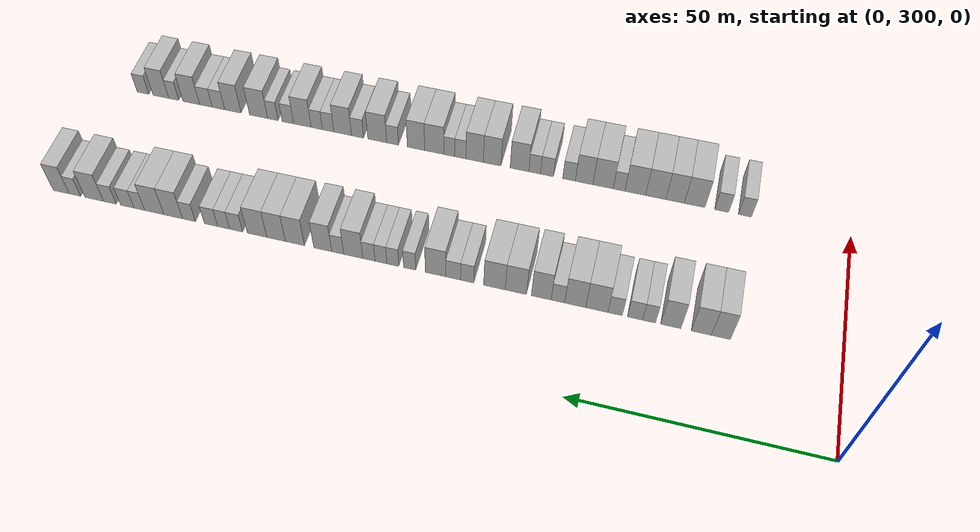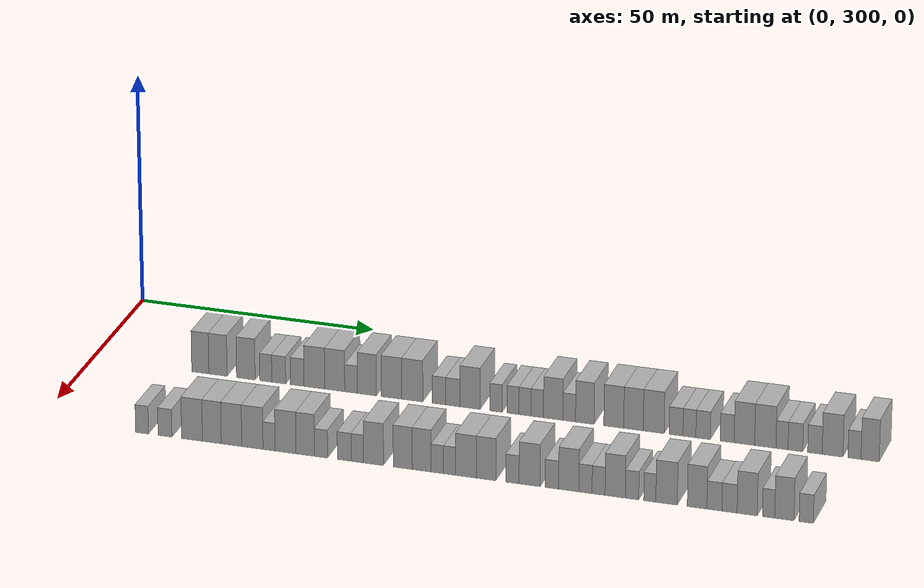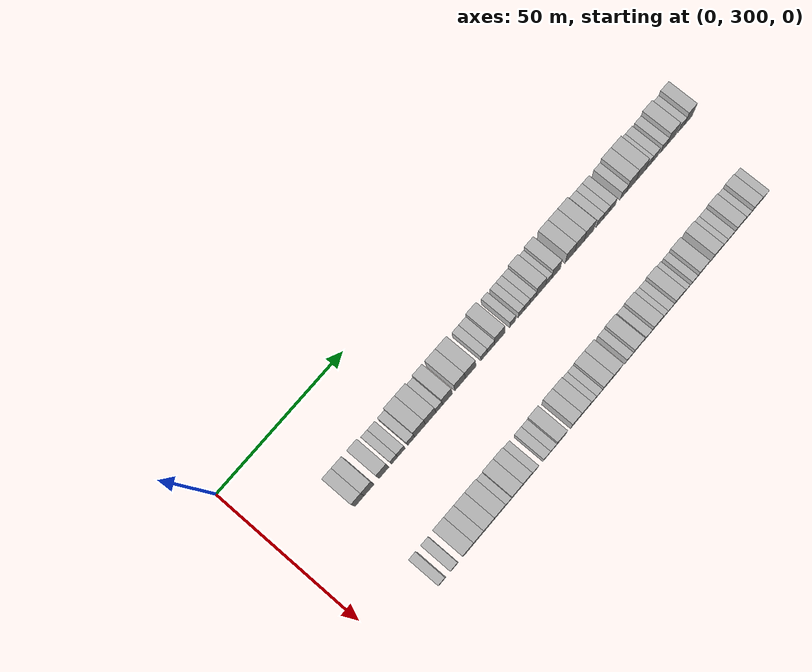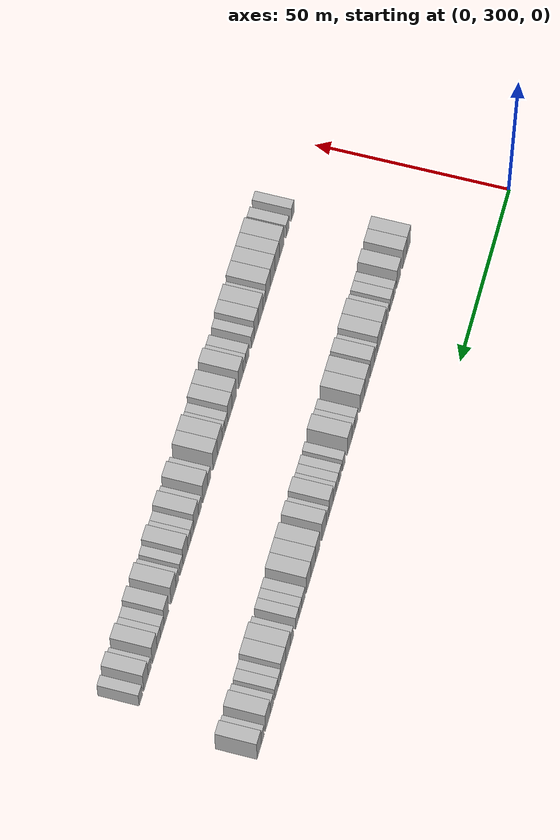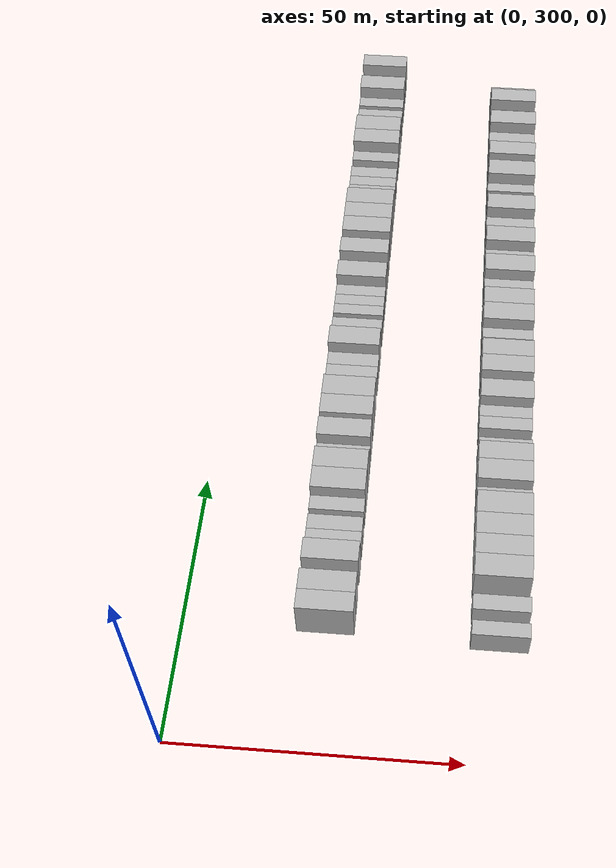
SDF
<sdf version="1.6">
 <world name="default">
  <model name="building_194">
   <static>1</static>
   <pose>25.0000 323.0744 0 0.000000 0.000000 0.000000</pose>
   <link name="link">
    <pose>0 0 4.50 0 0 0</pose>
    <collision name="collision"><geometry><box><size>10.0000 3.6449 9.0000</size></box></geometry></collision>
    <visual name="visual">
     <cast_shadows>0</cast_shadows>
     <geometry><box><size>10.0000 3.6449 9.0000</size></box></geometry>
     <material>
      <script>
       <uri>model://HANNAS_wall/materials/scripts</uri>
       <uri>model://HANNAS_wall/materials/textures</uri>
       <name>vrc/HANNAS_wall</name>
      </script>
     </material>
    </visual>
   </link>
  </model>
  <model name="building_195">
   <static>1</static>
   <pose>25.0000 326.8344 0 0.000000 0.000000 0.000000</pose>
   <link name="link">
    <pose>0 0 4.50 0 0 0</pose>
    <collision name="collision"><geometry><box><size>10.0000 3.8751 9.0000</size></box></geometry></collision>
    <visual name="visual">
     <cast_shadows>0</cast_shadows>
     <geometry><box><size>10.0000 3.8751 9.0000</size></box></geometry>
     <material>
      <script>
       <uri>model://HANNAS_wall/materials/scripts</uri>
       <uri>model://HANNAS_wall/materials/textures</uri>
       <name>vrc/HANNAS_wall</name>
      </script>
     </material>
    </visual>
   </link>
  </model>
  <model name="building_196">
   <static>1</static>
   <pose>25.0000 332.7412 0 0.000000 0.000000 0.000000</pose>
   <link name="link">
    <pose>0 0 4.50 0 0 0</pose>
    <collision name="collision"><geometry><box><size>10.0000 3.9386 9.0000</size></box></geometry></collision>
    <visual name="visual">
     <cast_shadows>0</cast_shadows>
     <geometry><box><size>10.0000 3.9386 9.0000</size></box></geometry>
     <material>
      <script>
       <uri>model://HANNAS_wall/materials/scripts</uri>
       <uri>model://HANNAS_wall/materials/textures</uri>
       <name>vrc/HANNAS_wall</name>
      </script>
     </material>
    </visual>
   </link>
  </model>
  <model name="building_197">
   <static>1</static>
   <pose>25.0000 336.9726 0 0.000000 0.000000 0.000000</pose>
   <link name="link">
    <pose>0 0 3.00 0 0 0</pose>
    <collision name="collision"><geometry><box><size>10.0000 2.5241 6.0000</size></box></geometry></collision>
    <visual name="visual">
     <cast_shadows>0</cast_shadows>
     <geometry><box><size>10.0000 2.5241 6.0000</size></box></geometry>
     <material>
      <script>
       <uri>model://HANNAS_wall/materials/scripts</uri>
       <uri>model://HANNAS_wall/materials/textures</uri>
       <name>vrc/HANNAS_wall</name>
      </script>
     </material>
    </visual>
   </link>
  </model>
  <model name="building_198">
   <static>1</static>
   <pose>25.0000 339.7141 0 0.000000 0.000000 0.000000</pose>
   <link name="link">
    <pose>0 0 3.00 0 0 0</pose>
    <collision name="collision"><geometry><box><size>10.0000 2.9589 6.0000</size></box></geometry></collision>
    <visual name="visual">
     <cast_shadows>0</cast_shadows>
     <geometry><box><size>10.0000 2.9589 6.0000</size></box></geometry>
     <material>
      <script>
       <uri>model://HANNAS_wall/materials/scripts</uri>
       <uri>model://HANNAS_wall/materials/textures</uri>
       <name>vrc/HANNAS_wall</name>
      </script>
     </material>
    </visual>
   </link>
  </model>
  <model name="building_199">
   <static>1</static>
   <pose>25.0000 343.6102 0 0.000000 0.000000 0.000000</pose>
   <link name="link">
    <pose>0 0 3.00 0 0 0</pose>
    <collision name="collision"><geometry><box><size>10.0000 2.8333 6.0000</size></box></geometry></collision>
    <visual name="visual">
     <cast_shadows>0</cast_shadows>
     <geometry><box><size>10.0000 2.8333 6.0000</size></box></geometry>
     <material>
      <script>
       <uri>model://HANNAS_wall/materials/scripts</uri>
       <uri>model://HANNAS_wall/materials/textures</uri>
       <name>vrc/HANNAS_wall</name>
      </script>
     </material>
    </visual>
   </link>
  </model>
  <model name="building_200">
   <static>1</static>
   <pose>25.0000 347.2183 0 0.000000 0.000000 0.000000</pose>
   <link name="link">
    <pose>0 0 4.50 0 0 0</pose>
    <collision name="collision"><geometry><box><size>10.0000 4.3829 9.0000</size></box></geometry></collision>
    <visual name="visual">
     <cast_shadows>0</cast_shadows>
     <geometry><box><size>10.0000 4.3829 9.0000</size></box></geometry>
     <material>
      <script>
       <uri>model://HANNAS_wall/materials/scripts</uri>
       <uri>model://HANNAS_wall/materials/textures</uri>
       <name>vrc/HANNAS_wall</name>
      </script>
     </material>
    </visual>
   </link>
  </model>
  <model name="building_201">
   <static>1</static>
   <pose>25.0000 351.5114 0 0.000000 0.000000 0.000000</pose>
   <link name="link">
    <pose>0 0 4.50 0 0 0</pose>
    <collision name="collision"><geometry><box><size>10.0000 4.2033 9.0000</size></box></geometry></collision>
    <visual name="visual">
     <cast_shadows>0</cast_shadows>
     <geometry><box><size>10.0000 4.2033 9.0000</size></box></geometry>
     <material>
      <script>
       <uri>model://HANNAS_wall/materials/scripts</uri>
       <uri>model://HANNAS_wall/materials/textures</uri>
       <name>vrc/HANNAS_wall</name>
      </script>
     </material>
    </visual>
   </link>
  </model>
  <model name="building_202">
   <static>1</static>
   <pose>25.0000 354.9556 0 0.000000 0.000000 0.000000</pose>
   <link name="link">
    <pose>0 0 3.00 0 0 0</pose>
    <collision name="collision"><geometry><box><size>10.0000 2.6851 6.0000</size></box></geometry></collision>
    <visual name="visual">
     <cast_shadows>0</cast_shadows>
     <geometry><box><size>10.0000 2.6851 6.0000</size></box></geometry>
     <material>
      <script>
       <uri>model://HANNAS_wall/materials/scripts</uri>
       <uri>model://HANNAS_wall/materials/textures</uri>
       <name>vrc/HANNAS_wall</name>
      </script>
     </material>
    </visual>
   </link>
  </model>
  <model name="building_203">
   <static>1</static>
   <pose>25.0000 358.2841 0 0.000000 0.000000 0.000000</pose>
   <link name="link">
    <pose>0 0 4.50 0 0 0</pose>
    <collision name="collision"><geometry><box><size>10.0000 3.9718 9.0000</size></box></geometry></collision>
    <visual name="visual">
     <cast_shadows>0</cast_shadows>
     <geometry><box><size>10.0000 3.9718 9.0000</size></box></geometry>
     <material>
      <script>
       <uri>model://HANNAS_wall/materials/scripts</uri>
       <uri>model://HANNAS_wall/materials/textures</uri>
       <name>vrc/HANNAS_wall</name>
      </script>
     </material>
    </visual>
   </link>
  </model>
  <model name="building_204">
   <static>1</static>
   <pose>25.0000 363.4045 0 0.000000 0.000000 0.000000</pose>
   <link name="link">
    <pose>0 0 4.50 0 0 0</pose>
    <collision name="collision"><geometry><box><size>10.0000 4.2691 9.0000</size></box></geometry></collision>
    <visual name="visual">
     <cast_shadows>0</cast_shadows>
     <geometry><box><size>10.0000 4.2691 9.0000</size></box></geometry>
     <material>
      <script>
       <uri>model://HANNAS_wall/materials/scripts</uri>
       <uri>model://HANNAS_wall/materials/textures</uri>
       <name>vrc/HANNAS_wall</name>
      </script>
     </material>
    </visual>
   </link>
  </model>
  <model name="building_205">
   <static>1</static>
   <pose>25.0000 367.7412 0 0.000000 0.000000 0.000000</pose>
   <link name="link">
    <pose>0 0 4.50 0 0 0</pose>
    <collision name="collision"><geometry><box><size>10.0000 4.4044 9.0000</size></box></geometry></collision>
    <visual name="visual">
     <cast_shadows>0</cast_shadows>
     <geometry><box><size>10.0000 4.4044 9.0000</size></box></geometry>
     <material>
      <script>
       <uri>model://HANNAS_wall/materials/scripts</uri>
       <uri>model://HANNAS_wall/materials/textures</uri>
       <name>vrc/HANNAS_wall</name>
      </script>
     </material>
    </visual>
   </link>
  </model>
  <model name="building_206">
   <static>1</static>
   <pose>25.0000 373.3161 0 0.000000 0.000000 0.000000</pose>
   <link name="link">
    <pose>0 0 3.00 0 0 0</pose>
    <collision name="collision"><geometry><box><size>10.0000 2.7453 6.0000</size></box></geometry></collision>
    <visual name="visual">
     <cast_shadows>0</cast_shadows>
     <geometry><box><size>10.0000 2.7453 6.0000</size></box></geometry>
     <material>
      <script>
       <uri>model://HANNAS_wall/materials/scripts</uri>
       <uri>model://HANNAS_wall/materials/textures</uri>
       <name>vrc/HANNAS_wall</name>
      </script>
     </material>
    </visual>
   </link>
  </model>
  <model name="building_207">
   <static>1</static>
   <pose>25.0000 376.1851 0 0.000000 0.000000 0.000000</pose>
   <link name="link">
    <pose>0 0 3.00 0 0 0</pose>
    <collision name="collision"><geometry><box><size>10.0000 2.9929 6.0000</size></box></geometry></collision>
    <visual name="visual">
     <cast_shadows>0</cast_shadows>
     <geometry><box><size>10.0000 2.9929 6.0000</size></box></geometry>
     <material>
      <script>
       <uri>model://HANNAS_wall/materials/scripts</uri>
       <uri>model://HANNAS_wall/materials/textures</uri>
       <name>vrc/HANNAS_wall</name>
      </script>
     </material>
    </visual>
   </link>
  </model>
  <model name="building_208">
   <static>1</static>
   <pose>25.0000 379.7886 0 0.000000 0.000000 0.000000</pose>
   <link name="link">
    <pose>0 0 4.50 0 0 0</pose>
    <collision name="collision"><geometry><box><size>10.0000 4.2140 9.0000</size></box></geometry></collision>
    <visual name="visual">
     <cast_shadows>0</cast_shadows>
     <geometry><box><size>10.0000 4.2140 9.0000</size></box></geometry>
     <material>
      <script>
       <uri>model://HANNAS_wall/materials/scripts</uri>
       <uri>model://HANNAS_wall/materials/textures</uri>
       <name>vrc/HANNAS_wall</name>
      </script>
     </material>
    </visual>
   </link>
  </model>
  <model name="building_209">
   <static>1</static>
   <pose>25.0000 385.1678 0 0.000000 0.000000 0.000000</pose>
   <link name="link">
    <pose>0 0 3.00 0 0 0</pose>
    <collision name="collision"><geometry><box><size>10.0000 2.5443 6.0000</size></box></geometry></collision>
    <visual name="visual">
     <cast_shadows>0</cast_shadows>
     <geometry><box><size>10.0000 2.5443 6.0000</size></box></geometry>
     <material>
      <script>
       <uri>model://HANNAS_wall/materials/scripts</uri>
       <uri>model://HANNAS_wall/materials/textures</uri>
       <name>vrc/HANNAS_wall</name>
      </script>
     </material>
    </visual>
   </link>
  </model>
  <model name="building_210">
   <static>1</static>
   <pose>25.0000 388.6844 0 0.000000 0.000000 0.000000</pose>
   <link name="link">
    <pose>0 0 3.00 0 0 0</pose>
    <collision name="collision"><geometry><box><size>10.0000 2.4890 6.0000</size></box></geometry></collision>
    <visual name="visual">
     <cast_shadows>0</cast_shadows>
     <geometry><box><size>10.0000 2.4890 6.0000</size></box></geometry>
     <material>
      <script>
       <uri>model://HANNAS_wall/materials/scripts</uri>
       <uri>model://HANNAS_wall/materials/textures</uri>
       <name>vrc/HANNAS_wall</name>
      </script>
     </material>
    </visual>
   </link>
  </model>
  <model name="building_211">
   <static>1</static>
   <pose>25.0000 391.1686 0 0.000000 0.000000 0.000000</pose>
   <link name="link">
    <pose>0 0 3.00 0 0 0</pose>
    <collision name="collision"><geometry><box><size>10.0000 2.4794 6.0000</size></box></geometry></collision>
    <visual name="visual">
     <cast_shadows>0</cast_shadows>
     <geometry><box><size>10.0000 2.4794 6.0000</size></box></geometry>
     <material>
      <script>
       <uri>model://HANNAS_wall/materials/scripts</uri>
       <uri>model://HANNAS_wall/materials/textures</uri>
       <name>vrc/HANNAS_wall</name>
      </script>
     </material>
    </visual>
   </link>
  </model>
  <model name="building_212">
   <static>1</static>
   <pose>25.0000 393.6971 0 0.000000 0.000000 0.000000</pose>
   <link name="link">
    <pose>0 0 3.00 0 0 0</pose>
    <collision name="collision"><geometry><box><size>10.0000 2.5776 6.0000</size></box></geometry></collision>
    <visual name="visual">
     <cast_shadows>0</cast_shadows>
     <geometry><box><size>10.0000 2.5776 6.0000</size></box></geometry>
     <material>
      <script>
       <uri>model://HANNAS_wall/materials/scripts</uri>
       <uri>model://HANNAS_wall/materials/textures</uri>
       <name>vrc/HANNAS_wall</name>
      </script>
     </material>
    </visual>
   </link>
  </model>
  <model name="building_213">
   <static>1</static>
   <pose>25.0000 396.9942 0 0.000000 0.000000 0.000000</pose>
   <link name="link">
    <pose>0 0 4.50 0 0 0</pose>
    <collision name="collision"><geometry><box><size>10.0000 4.0166 9.0000</size></box></geometry></collision>
    <visual name="visual">
     <cast_shadows>0</cast_shadows>
     <geometry><box><size>10.0000 4.0166 9.0000</size></box></geometry>
     <material>
      <script>
       <uri>model://HANNAS_wall/materials/scripts</uri>
       <uri>model://HANNAS_wall/materials/textures</uri>
       <name>vrc/HANNAS_wall</name>
      </script>
     </material>
    </visual>
   </link>
  </model>
  <model name="building_214">
   <static>1</static>
   <pose>25.0000 400.2884 0 0.000000 0.000000 0.000000</pose>
   <link name="link">
    <pose>0 0 3.00 0 0 0</pose>
    <collision name="collision"><geometry><box><size>10.0000 2.5719 6.0000</size></box></geometry></collision>
    <visual name="visual">
     <cast_shadows>0</cast_shadows>
     <geometry><box><size>10.0000 2.5719 6.0000</size></box></geometry>
     <material>
      <script>
       <uri>model://HANNAS_wall/materials/scripts</uri>
       <uri>model://HANNAS_wall/materials/textures</uri>
       <name>vrc/HANNAS_wall</name>
      </script>
     </material>
    </visual>
   </link>
  </model>
  <model name="building_215">
   <static>1</static>
   <pose>25.0000 403.4762 0 0.000000 0.000000 0.000000</pose>
   <link name="link">
    <pose>0 0 4.50 0 0 0</pose>
    <collision name="collision"><geometry><box><size>10.0000 3.8037 9.0000</size></box></geometry></collision>
    <visual name="visual">
     <cast_shadows>0</cast_shadows>
     <geometry><box><size>10.0000 3.8037 9.0000</size></box></geometry>
     <material>
      <script>
       <uri>model://HANNAS_wall/materials/scripts</uri>
       <uri>model://HANNAS_wall/materials/textures</uri>
       <name>vrc/HANNAS_wall</name>
      </script>
     </material>
    </visual>
   </link>
  </model>
  <model name="building_216">
   <static>1</static>
   <pose>25.0000 409.4298 0 0.000000 0.000000 0.000000</pose>
   <link name="link">
    <pose>0 0 4.50 0 0 0</pose>
    <collision name="collision"><geometry><box><size>10.0000 4.1034 9.0000</size></box></geometry></collision>
    <visual name="visual">
     <cast_shadows>0</cast_shadows>
     <geometry><box><size>10.0000 4.1034 9.0000</size></box></geometry>
     <material>
      <script>
       <uri>model://HANNAS_wall/materials/scripts</uri>
       <uri>model://HANNAS_wall/materials/textures</uri>
       <name>vrc/HANNAS_wall</name>
      </script>
     </material>
    </visual>
   </link>
  </model>
  <model name="building_217">
   <static>1</static>
   <pose>25.0000 413.4845 0 0.000000 0.000000 0.000000</pose>
   <link name="link">
    <pose>0 0 4.50 0 0 0</pose>
    <collision name="collision"><geometry><box><size>10.0000 4.0061 9.0000</size></box></geometry></collision>
    <visual name="visual">
     <cast_shadows>0</cast_shadows>
     <geometry><box><size>10.0000 4.0061 9.0000</size></box></geometry>
     <material>
      <script>
       <uri>model://HANNAS_wall/materials/scripts</uri>
       <uri>model://HANNAS_wall/materials/textures</uri>
       <name>vrc/HANNAS_wall</name>
      </script>
     </material>
    </visual>
   </link>
  </model>
  <model name="building_218">
   <static>1</static>
   <pose>25.0000 417.6067 0 0.000000 0.000000 0.000000</pose>
   <link name="link">
    <pose>0 0 4.50 0 0 0</pose>
    <collision name="collision"><geometry><box><size>10.0000 4.2381 9.0000</size></box></geometry></collision>
    <visual name="visual">
     <cast_shadows>0</cast_shadows>
     <geometry><box><size>10.0000 4.2381 9.0000</size></box></geometry>
     <material>
      <script>
       <uri>model://HANNAS_wall/materials/scripts</uri>
       <uri>model://HANNAS_wall/materials/textures</uri>
       <name>vrc/HANNAS_wall</name>
      </script>
     </material>
    </visual>
   </link>
  </model>
  <model name="building_219">
   <static>1</static>
   <pose>25.0000 422.1413 0 0.000000 0.000000 0.000000</pose>
   <link name="link">
    <pose>0 0 3.00 0 0 0</pose>
    <collision name="collision"><geometry><box><size>10.0000 2.8313 6.0000</size></box></geometry></collision>
    <visual name="visual">
     <cast_shadows>0</cast_shadows>
     <geometry><box><size>10.0000 2.8313 6.0000</size></box></geometry>
     <material>
      <script>
       <uri>model://HANNAS_wall/materials/scripts</uri>
       <uri>model://HANNAS_wall/materials/textures</uri>
       <name>vrc/HANNAS_wall</name>
      </script>
     </material>
    </visual>
   </link>
  </model>
  <model name="building_220">
   <static>1</static>
   <pose>25.0000 424.8656 0 0.000000 0.000000 0.000000</pose>
   <link name="link">
    <pose>0 0 3.00 0 0 0</pose>
    <collision name="collision"><geometry><box><size>10.0000 2.6172 6.0000</size></box></geometry></collision>
    <visual name="visual">
     <cast_shadows>0</cast_shadows>
     <geometry><box><size>10.0000 2.6172 6.0000</size></box></geometry>
     <material>
      <script>
       <uri>model://HANNAS_wall/materials/scripts</uri>
       <uri>model://HANNAS_wall/materials/textures</uri>
       <name>vrc/HANNAS_wall</name>
      </script>
     </material>
    </visual>
   </link>
  </model>
  <model name="building_221">
   <static>1</static>
   <pose>25.0000 427.6397 0 0.000000 0.000000 0.000000</pose>
   <link name="link">
    <pose>0 0 3.00 0 0 0</pose>
    <collision name="collision"><geometry><box><size>10.0000 2.9311 6.0000</size></box></geometry></collision>
    <visual name="visual">
     <cast_shadows>0</cast_shadows>
     <geometry><box><size>10.0000 2.9311 6.0000</size></box></geometry>
     <material>
      <script>
       <uri>model://HANNAS_wall/materials/scripts</uri>
       <uri>model://HANNAS_wall/materials/textures</uri>
       <name>vrc/HANNAS_wall</name>
      </script>
     </material>
    </visual>
   </link>
  </model>
  <model name="building_222">
   <static>1</static>
   <pose>25.0000 432.5252 0 0.000000 0.000000 0.000000</pose>
   <link name="link">
    <pose>0 0 3.00 0 0 0</pose>
    <collision name="collision"><geometry><box><size>10.0000 2.8399 6.0000</size></box></geometry></collision>
    <visual name="visual">
     <cast_shadows>0</cast_shadows>
     <geometry><box><size>10.0000 2.8399 6.0000</size></box></geometry>
     <material>
      <script>
       <uri>model://HANNAS_wall/materials/scripts</uri>
       <uri>model://HANNAS_wall/materials/textures</uri>
       <name>vrc/HANNAS_wall</name>
      </script>
     </material>
    </visual>
   </link>
  </model>
  <model name="building_223">
   <static>1</static>
   <pose>25.0000 436.0089 0 0.000000 0.000000 0.000000</pose>
   <link name="link">
    <pose>0 0 4.50 0 0 0</pose>
    <collision name="collision"><geometry><box><size>10.0000 4.1276 9.0000</size></box></geometry></collision>
    <visual name="visual">
     <cast_shadows>0</cast_shadows>
     <geometry><box><size>10.0000 4.1276 9.0000</size></box></geometry>
     <material>
      <script>
       <uri>model://HANNAS_wall/materials/scripts</uri>
       <uri>model://HANNAS_wall/materials/textures</uri>
       <name>vrc/HANNAS_wall</name>
      </script>
     </material>
    </visual>
   </link>
  </model>
  <model name="building_224">
   <static>1</static>
   <pose>25.0000 440.2263 0 0.000000 0.000000 0.000000</pose>
   <link name="link">
    <pose>0 0 4.50 0 0 0</pose>
    <collision name="collision"><geometry><box><size>10.0000 4.3072 9.0000</size></box></geometry></collision>
    <visual name="visual">
     <cast_shadows>0</cast_shadows>
     <geometry><box><size>10.0000 4.3072 9.0000</size></box></geometry>
     <material>
      <script>
       <uri>model://HANNAS_wall/materials/scripts</uri>
       <uri>model://HANNAS_wall/materials/textures</uri>
       <name>vrc/HANNAS_wall</name>
      </script>
     </material>
    </visual>
   </link>
  </model>
  <model name="building_225">
   <static>1</static>
   <pose>25.0000 443.5852 0 0.000000 0.000000 0.000000</pose>
   <link name="link">
    <pose>0 0 3.00 0 0 0</pose>
    <collision name="collision"><geometry><box><size>10.0000 2.4105 6.0000</size></box></geometry></collision>
    <visual name="visual">
     <cast_shadows>0</cast_shadows>
     <geometry><box><size>10.0000 2.4105 6.0000</size></box></geometry>
     <material>
      <script>
       <uri>model://HANNAS_wall/materials/scripts</uri>
       <uri>model://HANNAS_wall/materials/textures</uri>
       <name>vrc/HANNAS_wall</name>
      </script>
     </material>
    </visual>
   </link>
  </model>
  <model name="building_226">
   <static>1</static>
   <pose>25.0000 446.2845 0 0.000000 0.000000 0.000000</pose>
   <link name="link">
    <pose>0 0 3.00 0 0 0</pose>
    <collision name="collision"><geometry><box><size>10.0000 2.9880 6.0000</size></box></geometry></collision>
    <visual name="visual">
     <cast_shadows>0</cast_shadows>
     <geometry><box><size>10.0000 2.9880 6.0000</size></box></geometry>
     <material>
      <script>
       <uri>model://HANNAS_wall/materials/scripts</uri>
       <uri>model://HANNAS_wall/materials/textures</uri>
       <name>vrc/HANNAS_wall</name>
      </script>
     </material>
    </visual>
   </link>
  </model>
  <model name="building_227">
   <static>1</static>
   <pose>25.0000 450.2236 0 0.000000 0.000000 0.000000</pose>
   <link name="link">
    <pose>0 0 3.00 0 0 0</pose>
    <collision name="collision"><geometry><box><size>10.0000 2.8902 6.0000</size></box></geometry></collision>
    <visual name="visual">
     <cast_shadows>0</cast_shadows>
     <geometry><box><size>10.0000 2.8902 6.0000</size></box></geometry>
     <material>
      <script>
       <uri>model://HANNAS_wall/materials/scripts</uri>
       <uri>model://HANNAS_wall/materials/textures</uri>
       <name>vrc/HANNAS_wall</name>
      </script>
     </material>
    </visual>
   </link>
  </model>
  <model name="building_228">
   <static>1</static>
   <pose>25.0000 453.7662 0 0.000000 0.000000 0.000000</pose>
   <link name="link">
    <pose>0 0 4.50 0 0 0</pose>
    <collision name="collision"><geometry><box><size>10.0000 4.1950 9.0000</size></box></geometry></collision>
    <visual name="visual">
     <cast_shadows>0</cast_shadows>
     <geometry><box><size>10.0000 4.1950 9.0000</size></box></geometry>
     <material>
      <script>
       <uri>model://HANNAS_wall/materials/scripts</uri>
       <uri>model://HANNAS_wall/materials/textures</uri>
       <name>vrc/HANNAS_wall</name>
      </script>
     </material>
    </visual>
   </link>
  </model>
  <model name="building_229">
   <static>1</static>
   <pose>25.0000 458.1690 0 0.000000 0.000000 0.000000</pose>
   <link name="link">
    <pose>0 0 3.00 0 0 0</pose>
    <collision name="collision"><geometry><box><size>10.0000 2.6106 6.0000</size></box></geometry></collision>
    <visual name="visual">
     <cast_shadows>0</cast_shadows>
     <geometry><box><size>10.0000 2.6106 6.0000</size></box></geometry>
     <material>
      <script>
       <uri>model://HANNAS_wall/materials/scripts</uri>
       <uri>model://HANNAS_wall/materials/textures</uri>
       <name>vrc/HANNAS_wall</name>
      </script>
     </material>
    </visual>
   </link>
  </model>
  <model name="building_230">
   <static>1</static>
   <pose>25.0000 461.2917 0 0.000000 0.000000 0.000000</pose>
   <link name="link">
    <pose>0 0 4.50 0 0 0</pose>
    <collision name="collision"><geometry><box><size>10.0000 3.6348 9.0000</size></box></geometry></collision>
    <visual name="visual">
     <cast_shadows>0</cast_shadows>
     <geometry><box><size>10.0000 3.6348 9.0000</size></box></geometry>
     <material>
      <script>
       <uri>model://HANNAS_wall/materials/scripts</uri>
       <uri>model://HANNAS_wall/materials/textures</uri>
       <name>vrc/HANNAS_wall</name>
      </script>
     </material>
    </visual>
   </link>
  </model>
  <model name="building_423">
   <static>1</static>
   <pose>55.0000 321.5183 0 0.000000 0.000000 0.000000</pose>
   <link name="link">
    <pose>0 0 3.00 0 0 0</pose>
    <collision name="collision"><geometry><box><size>10.0000 2.6837 6.0000</size></box></geometry></collision>
    <visual name="visual">
     <cast_shadows>0</cast_shadows>
     <geometry><box><size>10.0000 2.6837 6.0000</size></box></geometry>
     <material>
      <script>
       <uri>model://HANNAS_wall/materials/scripts</uri>
       <uri>model://HANNAS_wall/materials/textures</uri>
       <name>vrc/HANNAS_wall</name>
      </script>
     </material>
    </visual>
   </link>
  </model>
  <model name="building_424">
   <static>1</static>
   <pose>55.0000 326.3149 0 0.000000 0.000000 0.000000</pose>
   <link name="link">
    <pose>0 0 3.00 0 0 0</pose>
    <collision name="collision"><geometry><box><size>10.0000 2.9095 6.0000</size></box></geometry></collision>
    <visual name="visual">
     <cast_shadows>0</cast_shadows>
     <geometry><box><size>10.0000 2.9095 6.0000</size></box></geometry>
     <material>
      <script>
       <uri>model://HANNAS_wall/materials/scripts</uri>
       <uri>model://HANNAS_wall/materials/textures</uri>
       <name>vrc/HANNAS_wall</name>
      </script>
     </material>
    </visual>
   </link>
  </model>
  <model name="building_425">
   <static>1</static>
   <pose>55.0000 331.9313 0 0.000000 0.000000 0.000000</pose>
   <link name="link">
    <pose>0 0 4.50 0 0 0</pose>
    <collision name="collision"><geometry><box><size>10.0000 4.3233 9.0000</size></box></geometry></collision>
    <visual name="visual">
     <cast_shadows>0</cast_shadows>
     <geometry><box><size>10.0000 4.3233 9.0000</size></box></geometry>
     <material>
      <script>
       <uri>model://HANNAS_wall/materials/scripts</uri>
       <uri>model://HANNAS_wall/materials/textures</uri>
       <name>vrc/HANNAS_wall</name>
      </script>
     </material>
    </visual>
   </link>
  </model>
  <model name="building_426">
   <static>1</static>
   <pose>55.0000 336.0458 0 0.000000 0.000000 0.000000</pose>
   <link name="link">
    <pose>0 0 4.50 0 0 0</pose>
    <collision name="collision"><geometry><box><size>10.0000 3.9057 9.0000</size></box></geometry></collision>
    <visual name="visual">
     <cast_shadows>0</cast_shadows>
     <geometry><box><size>10.0000 3.9057 9.0000</size></box></geometry>
     <material>
      <script>
       <uri>model://HANNAS_wall/materials/scripts</uri>
       <uri>model://HANNAS_wall/materials/textures</uri>
       <name>vrc/HANNAS_wall</name>
      </script>
     </material>
    </visual>
   </link>
  </model>
  <model name="building_427">
   <static>1</static>
   <pose>55.0000 340.1292 0 0.000000 0.000000 0.000000</pose>
   <link name="link">
    <pose>0 0 4.50 0 0 0</pose>
    <collision name="collision"><geometry><box><size>10.0000 4.2609 9.0000</size></box></geometry></collision>
    <visual name="visual">
     <cast_shadows>0</cast_shadows>
     <geometry><box><size>10.0000 4.2609 9.0000</size></box></geometry>
     <material>
      <script>
       <uri>model://HANNAS_wall/materials/scripts</uri>
       <uri>model://HANNAS_wall/materials/textures</uri>
       <name>vrc/HANNAS_wall</name>
      </script>
     </material>
    </visual>
   </link>
  </model>
  <model name="building_428">
   <static>1</static>
   <pose>55.0000 344.4555 0 0.000000 0.000000 0.000000</pose>
   <link name="link">
    <pose>0 0 4.50 0 0 0</pose>
    <collision name="collision"><geometry><box><size>10.0000 4.3916 9.0000</size></box></geometry></collision>
    <visual name="visual">
     <cast_shadows>0</cast_shadows>
     <geometry><box><size>10.0000 4.3916 9.0000</size></box></geometry>
     <material>
      <script>
       <uri>model://HANNAS_wall/materials/scripts</uri>
       <uri>model://HANNAS_wall/materials/textures</uri>
       <name>vrc/HANNAS_wall</name>
      </script>
     </material>
    </visual>
   </link>
  </model>
  <model name="building_429">
   <static>1</static>
   <pose>55.0000 347.8899 0 0.000000 0.000000 0.000000</pose>
   <link name="link">
    <pose>0 0 3.00 0 0 0</pose>
    <collision name="collision"><geometry><box><size>10.0000 2.4773 6.0000</size></box></geometry></collision>
    <visual name="visual">
     <cast_shadows>0</cast_shadows>
     <geometry><box><size>10.0000 2.4773 6.0000</size></box></geometry>
     <material>
      <script>
       <uri>model://HANNAS_wall/materials/scripts</uri>
       <uri>model://HANNAS_wall/materials/textures</uri>
       <name>vrc/HANNAS_wall</name>
      </script>
     </material>
    </visual>
   </link>
  </model>
  <model name="building_430">
   <static>1</static>
   <pose>55.0000 351.2875 0 0.000000 0.000000 0.000000</pose>
   <link name="link">
    <pose>0 0 4.50 0 0 0</pose>
    <collision name="collision"><geometry><box><size>10.0000 4.3177 9.0000</size></box></geometry></collision>
    <visual name="visual">
     <cast_shadows>0</cast_shadows>
     <geometry><box><size>10.0000 4.3177 9.0000</size></box></geometry>
     <material>
      <script>
       <uri>model://HANNAS_wall/materials/scripts</uri>
       <uri>model://HANNAS_wall/materials/textures</uri>
       <name>vrc/HANNAS_wall</name>
      </script>
     </material>
    </visual>
   </link>
  </model>
  <model name="building_431">
   <static>1</static>
   <pose>55.0000 355.3348 0 0.000000 0.000000 0.000000</pose>
   <link name="link">
    <pose>0 0 4.50 0 0 0</pose>
    <collision name="collision"><geometry><box><size>10.0000 3.7770 9.0000</size></box></geometry></collision>
    <visual name="visual">
     <cast_shadows>0</cast_shadows>
     <geometry><box><size>10.0000 3.7770 9.0000</size></box></geometry>
     <material>
      <script>
       <uri>model://HANNAS_wall/materials/scripts</uri>
       <uri>model://HANNAS_wall/materials/textures</uri>
       <name>vrc/HANNAS_wall</name>
      </script>
     </material>
    </visual>
   </link>
  </model>
  <model name="building_432">
   <static>1</static>
   <pose>55.0000 358.5879 0 0.000000 0.000000 0.000000</pose>
   <link name="link">
    <pose>0 0 3.00 0 0 0</pose>
    <collision name="collision"><geometry><box><size>10.0000 2.7291 6.0000</size></box></geometry></collision>
    <visual name="visual">
     <cast_shadows>0</cast_shadows>
     <geometry><box><size>10.0000 2.7291 6.0000</size></box></geometry>
     <material>
      <script>
       <uri>model://HANNAS_wall/materials/scripts</uri>
       <uri>model://HANNAS_wall/materials/textures</uri>
       <name>vrc/HANNAS_wall</name>
      </script>
     </material>
    </visual>
   </link>
  </model>
  <model name="building_433">
   <static>1</static>
   <pose>55.0000 363.3466 0 0.000000 0.000000 0.000000</pose>
   <link name="link">
    <pose>0 0 3.00 0 0 0</pose>
    <collision name="collision"><geometry><box><size>10.0000 2.7882 6.0000</size></box></geometry></collision>
    <visual name="visual">
     <cast_shadows>0</cast_shadows>
     <geometry><box><size>10.0000 2.7882 6.0000</size></box></geometry>
     <material>
      <script>
       <uri>model://HANNAS_wall/materials/scripts</uri>
       <uri>model://HANNAS_wall/materials/textures</uri>
       <name>vrc/HANNAS_wall</name>
      </script>
     </material>
    </visual>
   </link>
  </model>
  <model name="building_434">
   <static>1</static>
   <pose>55.0000 366.0175 0 0.000000 0.000000 0.000000</pose>
   <link name="link">
    <pose>0 0 3.00 0 0 0</pose>
    <collision name="collision"><geometry><box><size>10.0000 2.5536 6.0000</size></box></geometry></collision>
    <visual name="visual">
     <cast_shadows>0</cast_shadows>
     <geometry><box><size>10.0000 2.5536 6.0000</size></box></geometry>
     <material>
      <script>
       <uri>model://HANNAS_wall/materials/scripts</uri>
       <uri>model://HANNAS_wall/materials/textures</uri>
       <name>vrc/HANNAS_wall</name>
      </script>
     </material>
    </visual>
   </link>
  </model>
  <model name="building_435">
   <static>1</static>
   <pose>55.0000 369.3379 0 0.000000 0.000000 0.000000</pose>
   <link name="link">
    <pose>0 0 4.50 0 0 0</pose>
    <collision name="collision"><geometry><box><size>10.0000 4.0872 9.0000</size></box></geometry></collision>
    <visual name="visual">
     <cast_shadows>0</cast_shadows>
     <geometry><box><size>10.0000 4.0872 9.0000</size></box></geometry>
     <material>
      <script>
       <uri>model://HANNAS_wall/materials/scripts</uri>
       <uri>model://HANNAS_wall/materials/textures</uri>
       <name>vrc/HANNAS_wall</name>
      </script>
     </material>
    </visual>
   </link>
  </model>
  <model name="building_436">
   <static>1</static>
   <pose>55.0000 375.3140 0 0.000000 0.000000 0.000000</pose>
   <link name="link">
    <pose>0 0 4.50 0 0 0</pose>
    <collision name="collision"><geometry><box><size>10.0000 3.8650 9.0000</size></box></geometry></collision>
    <visual name="visual">
     <cast_shadows>0</cast_shadows>
     <geometry><box><size>10.0000 3.8650 9.0000</size></box></geometry>
     <material>
      <script>
       <uri>model://HANNAS_wall/materials/scripts</uri>
       <uri>model://HANNAS_wall/materials/textures</uri>
       <name>vrc/HANNAS_wall</name>
      </script>
     </material>
    </visual>
   </link>
  </model>
  <model name="building_437">
   <static>1</static>
   <pose>55.0000 379.1735 0 0.000000 0.000000 0.000000</pose>
   <link name="link">
    <pose>0 0 4.50 0 0 0</pose>
    <collision name="collision"><geometry><box><size>10.0000 3.8540 9.0000</size></box></geometry></collision>
    <visual name="visual">
     <cast_shadows>0</cast_shadows>
     <geometry><box><size>10.0000 3.8540 9.0000</size></box></geometry>
     <material>
      <script>
       <uri>model://HANNAS_wall/materials/scripts</uri>
       <uri>model://HANNAS_wall/materials/textures</uri>
       <name>vrc/HANNAS_wall</name>
      </script>
     </material>
    </visual>
   </link>
  </model>
  <model name="building_438">
   <static>1</static>
   <pose>55.0000 382.3541 0 0.000000 0.000000 0.000000</pose>
   <link name="link">
    <pose>0 0 3.00 0 0 0</pose>
    <collision name="collision"><geometry><box><size>10.0000 2.5071 6.0000</size></box></geometry></collision>
    <visual name="visual">
     <cast_shadows>0</cast_shadows>
     <geometry><box><size>10.0000 2.5071 6.0000</size></box></geometry>
     <material>
      <script>
       <uri>model://HANNAS_wall/materials/scripts</uri>
       <uri>model://HANNAS_wall/materials/textures</uri>
       <name>vrc/HANNAS_wall</name>
      </script>
     </material>
    </visual>
   </link>
  </model>
  <model name="building_439">
   <static>1</static>
   <pose>55.0000 384.8189 0 0.000000 0.000000 0.000000</pose>
   <link name="link">
    <pose>0 0 3.00 0 0 0</pose>
    <collision name="collision"><geometry><box><size>10.0000 2.4227 6.0000</size></box></geometry></collision>
    <visual name="visual">
     <cast_shadows>0</cast_shadows>
     <geometry><box><size>10.0000 2.4227 6.0000</size></box></geometry>
     <material>
      <script>
       <uri>model://HANNAS_wall/materials/scripts</uri>
       <uri>model://HANNAS_wall/materials/textures</uri>
       <name>vrc/HANNAS_wall</name>
      </script>
     </material>
    </visual>
   </link>
  </model>
  <model name="building_440">
   <static>1</static>
   <pose>55.0000 388.1581 0 0.000000 0.000000 0.000000</pose>
   <link name="link">
    <pose>0 0 4.50 0 0 0</pose>
    <collision name="collision"><geometry><box><size>10.0000 4.2556 9.0000</size></box></geometry></collision>
    <visual name="visual">
     <cast_shadows>0</cast_shadows>
     <geometry><box><size>10.0000 4.2556 9.0000</size></box></geometry>
     <material>
      <script>
       <uri>model://HANNAS_wall/materials/scripts</uri>
       <uri>model://HANNAS_wall/materials/textures</uri>
       <name>vrc/HANNAS_wall</name>
      </script>
     </material>
    </visual>
   </link>
  </model>
  <model name="building_441">
   <static>1</static>
   <pose>55.0000 392.2474 0 0.000000 0.000000 0.000000</pose>
   <link name="link">
    <pose>0 0 4.50 0 0 0</pose>
    <collision name="collision"><geometry><box><size>10.0000 3.9229 9.0000</size></box></geometry></collision>
    <visual name="visual">
     <cast_shadows>0</cast_shadows>
     <geometry><box><size>10.0000 3.9229 9.0000</size></box></geometry>
     <material>
      <script>
       <uri>model://HANNAS_wall/materials/scripts</uri>
       <uri>model://HANNAS_wall/materials/textures</uri>
       <name>vrc/HANNAS_wall</name>
      </script>
     </material>
    </visual>
   </link>
  </model>
  <model name="building_442">
   <static>1</static>
   <pose>55.0000 397.5468 0 0.000000 0.000000 0.000000</pose>
   <link name="link">
    <pose>0 0 3.00 0 0 0</pose>
    <collision name="collision"><geometry><box><size>10.0000 2.6757 6.0000</size></box></geometry></collision>
    <visual name="visual">
     <cast_shadows>0</cast_shadows>
     <geometry><box><size>10.0000 2.6757 6.0000</size></box></geometry>
     <material>
      <script>
       <uri>model://HANNAS_wall/materials/scripts</uri>
       <uri>model://HANNAS_wall/materials/textures</uri>
       <name>vrc/HANNAS_wall</name>
      </script>
     </material>
    </visual>
   </link>
  </model>
  <model name="building_443">
   <static>1</static>
   <pose>55.0000 401.0124 0 0.000000 0.000000 0.000000</pose>
   <link name="link">
    <pose>0 0 4.50 0 0 0</pose>
    <collision name="collision"><geometry><box><size>10.0000 4.2555 9.0000</size></box></geometry></collision>
    <visual name="visual">
     <cast_shadows>0</cast_shadows>
     <geometry><box><size>10.0000 4.2555 9.0000</size></box></geometry>
     <material>
      <script>
       <uri>model://HANNAS_wall/materials/scripts</uri>
       <uri>model://HANNAS_wall/materials/textures</uri>
       <name>vrc/HANNAS_wall</name>
      </script>
     </material>
    </visual>
   </link>
  </model>
  <model name="building_444">
   <static>1</static>
   <pose>55.0000 405.5114 0 0.000000 0.000000 0.000000</pose>
   <link name="link">
    <pose>0 0 3.00 0 0 0</pose>
    <collision name="collision"><geometry><box><size>10.0000 2.7426 6.0000</size></box></geometry></collision>
    <visual name="visual">
     <cast_shadows>0</cast_shadows>
     <geometry><box><size>10.0000 2.7426 6.0000</size></box></geometry>
     <material>
      <script>
       <uri>model://HANNAS_wall/materials/scripts</uri>
       <uri>model://HANNAS_wall/materials/textures</uri>
       <name>vrc/HANNAS_wall</name>
      </script>
     </material>
    </visual>
   </link>
  </model>
  <model name="building_445">
   <static>1</static>
   <pose>55.0000 408.9087 0 0.000000 0.000000 0.000000</pose>
   <link name="link">
    <pose>0 0 4.50 0 0 0</pose>
    <collision name="collision"><geometry><box><size>10.0000 4.0519 9.0000</size></box></geometry></collision>
    <visual name="visual">
     <cast_shadows>0</cast_shadows>
     <geometry><box><size>10.0000 4.0519 9.0000</size></box></geometry>
     <material>
      <script>
       <uri>model://HANNAS_wall/materials/scripts</uri>
       <uri>model://HANNAS_wall/materials/textures</uri>
       <name>vrc/HANNAS_wall</name>
      </script>
     </material>
    </visual>
   </link>
  </model>
  <model name="building_446">
   <static>1</static>
   <pose>55.0000 412.2453 0 0.000000 0.000000 0.000000</pose>
   <link name="link">
    <pose>0 0 3.00 0 0 0</pose>
    <collision name="collision"><geometry><box><size>10.0000 2.6213 6.0000</size></box></geometry></collision>
    <visual name="visual">
     <cast_shadows>0</cast_shadows>
     <geometry><box><size>10.0000 2.6213 6.0000</size></box></geometry>
     <material>
      <script>
       <uri>model://HANNAS_wall/materials/scripts</uri>
       <uri>model://HANNAS_wall/materials/textures</uri>
       <name>vrc/HANNAS_wall</name>
      </script>
     </material>
    </visual>
   </link>
  </model>
  <model name="building_447">
   <static>1</static>
   <pose>55.0000 414.8561 0 0.000000 0.000000 0.000000</pose>
   <link name="link">
    <pose>0 0 3.00 0 0 0</pose>
    <collision name="collision"><geometry><box><size>10.0000 2.6004 6.0000</size></box></geometry></collision>
    <visual name="visual">
     <cast_shadows>0</cast_shadows>
     <geometry><box><size>10.0000 2.6004 6.0000</size></box></geometry>
     <material>
      <script>
       <uri>model://HANNAS_wall/materials/scripts</uri>
       <uri>model://HANNAS_wall/materials/textures</uri>
       <name>vrc/HANNAS_wall</name>
      </script>
     </material>
    </visual>
   </link>
  </model>
  <model name="building_448">
   <static>1</static>
   <pose>55.0000 418.1943 0 0.000000 0.000000 0.000000</pose>
   <link name="link">
    <pose>0 0 4.50 0 0 0</pose>
    <collision name="collision"><geometry><box><size>10.0000 4.0762 9.0000</size></box></geometry></collision>
    <visual name="visual">
     <cast_shadows>0</cast_shadows>
     <geometry><box><size>10.0000 4.0762 9.0000</size></box></geometry>
     <material>
      <script>
       <uri>model://HANNAS_wall/materials/scripts</uri>
       <uri>model://HANNAS_wall/materials/textures</uri>
       <name>vrc/HANNAS_wall</name>
      </script>
     </material>
    </visual>
   </link>
  </model>
  <model name="building_449">
   <static>1</static>
   <pose>55.0000 421.5586 0 0.000000 0.000000 0.000000</pose>
   <link name="link">
    <pose>0 0 3.00 0 0 0</pose>
    <collision name="collision"><geometry><box><size>10.0000 2.6523 6.0000</size></box></geometry></collision>
    <visual name="visual">
     <cast_shadows>0</cast_shadows>
     <geometry><box><size>10.0000 2.6523 6.0000</size></box></geometry>
     <material>
      <script>
       <uri>model://HANNAS_wall/materials/scripts</uri>
       <uri>model://HANNAS_wall/materials/textures</uri>
       <name>vrc/HANNAS_wall</name>
      </script>
     </material>
    </visual>
   </link>
  </model>
  <model name="building_450">
   <static>1</static>
   <pose>55.0000 425.0898 0 0.000000 0.000000 0.000000</pose>
   <link name="link">
    <pose>0 0 3.00 0 0 0</pose>
    <collision name="collision"><geometry><box><size>10.0000 2.4101 6.0000</size></box></geometry></collision>
    <visual name="visual">
     <cast_shadows>0</cast_shadows>
     <geometry><box><size>10.0000 2.4101 6.0000</size></box></geometry>
     <material>
      <script>
       <uri>model://HANNAS_wall/materials/scripts</uri>
       <uri>model://HANNAS_wall/materials/textures</uri>
       <name>vrc/HANNAS_wall</name>
      </script>
     </material>
    </visual>
   </link>
  </model>
  <model name="building_451">
   <static>1</static>
   <pose>55.0000 428.4187 0 0.000000 0.000000 0.000000</pose>
   <link name="link">
    <pose>0 0 4.50 0 0 0</pose>
    <collision name="collision"><geometry><box><size>10.0000 4.2476 9.0000</size></box></geometry></collision>
    <visual name="visual">
     <cast_shadows>0</cast_shadows>
     <geometry><box><size>10.0000 4.2476 9.0000</size></box></geometry>
     <material>
      <script>
       <uri>model://HANNAS_wall/materials/scripts</uri>
       <uri>model://HANNAS_wall/materials/textures</uri>
       <name>vrc/HANNAS_wall</name>
      </script>
     </material>
    </visual>
   </link>
  </model>
  <model name="building_452">
   <static>1</static>
   <pose>55.0000 434.4834 0 0.000000 0.000000 0.000000</pose>
   <link name="link">
    <pose>0 0 4.50 0 0 0</pose>
    <collision name="collision"><geometry><box><size>10.0000 3.8817 9.0000</size></box></geometry></collision>
    <visual name="visual">
     <cast_shadows>0</cast_shadows>
     <geometry><box><size>10.0000 3.8817 9.0000</size></box></geometry>
     <material>
      <script>
       <uri>model://HANNAS_wall/materials/scripts</uri>
       <uri>model://HANNAS_wall/materials/textures</uri>
       <name>vrc/HANNAS_wall</name>
      </script>
     </material>
    </visual>
   </link>
  </model>
  <model name="building_453">
   <static>1</static>
   <pose>55.0000 437.9094 0 0.000000 0.000000 0.000000</pose>
   <link name="link">
    <pose>0 0 3.00 0 0 0</pose>
    <collision name="collision"><geometry><box><size>10.0000 2.9702 6.0000</size></box></geometry></collision>
    <visual name="visual">
     <cast_shadows>0</cast_shadows>
     <geometry><box><size>10.0000 2.9702 6.0000</size></box></geometry>
     <material>
      <script>
       <uri>model://HANNAS_wall/materials/scripts</uri>
       <uri>model://HANNAS_wall/materials/textures</uri>
       <name>vrc/HANNAS_wall</name>
      </script>
     </material>
    </visual>
   </link>
  </model>
  <model name="building_454">
   <static>1</static>
   <pose>55.0000 440.8907 0 0.000000 0.000000 0.000000</pose>
   <link name="link">
    <pose>0 0 3.00 0 0 0</pose>
    <collision name="collision"><geometry><box><size>10.0000 2.9924 6.0000</size></box></geometry></collision>
    <visual name="visual">
     <cast_shadows>0</cast_shadows>
     <geometry><box><size>10.0000 2.9924 6.0000</size></box></geometry>
     <material>
      <script>
       <uri>model://HANNAS_wall/materials/scripts</uri>
       <uri>model://HANNAS_wall/materials/textures</uri>
       <name>vrc/HANNAS_wall</name>
      </script>
     </material>
    </visual>
   </link>
  </model>
  <model name="building_455">
   <static>1</static>
   <pose>55.0000 444.3852 0 0.000000 0.000000 0.000000</pose>
   <link name="link">
    <pose>0 0 4.50 0 0 0</pose>
    <collision name="collision"><geometry><box><size>10.0000 3.9965 9.0000</size></box></geometry></collision>
    <visual name="visual">
     <cast_shadows>0</cast_shadows>
     <geometry><box><size>10.0000 3.9965 9.0000</size></box></geometry>
     <material>
      <script>
       <uri>model://HANNAS_wall/materials/scripts</uri>
       <uri>model://HANNAS_wall/materials/textures</uri>
       <name>vrc/HANNAS_wall</name>
      </script>
     </material>
    </visual>
   </link>
  </model>
  <model name="building_456">
   <static>1</static>
   <pose>55.0000 448.5944 0 0.000000 0.000000 0.000000</pose>
   <link name="link">
    <pose>0 0 3.00 0 0 0</pose>
    <collision name="collision"><geometry><box><size>10.0000 2.4221 6.0000</size></box></geometry></collision>
    <visual name="visual">
     <cast_shadows>0</cast_shadows>
     <geometry><box><size>10.0000 2.4221 6.0000</size></box></geometry>
     <material>
      <script>
       <uri>model://HANNAS_wall/materials/scripts</uri>
       <uri>model://HANNAS_wall/materials/textures</uri>
       <name>vrc/HANNAS_wall</name>
      </script>
     </material>
    </visual>
   </link>
  </model>
  <model name="building_457">
   <static>1</static>
   <pose>55.0000 451.7030 0 0.000000 0.000000 0.000000</pose>
   <link name="link">
    <pose>0 0 4.50 0 0 0</pose>
    <collision name="collision"><geometry><box><size>10.0000 3.7951 9.0000</size></box></geometry></collision>
    <visual name="visual">
     <cast_shadows>0</cast_shadows>
     <geometry><box><size>10.0000 3.7951 9.0000</size></box></geometry>
     <material>
      <script>
       <uri>model://HANNAS_wall/materials/scripts</uri>
       <uri>model://HANNAS_wall/materials/textures</uri>
       <name>vrc/HANNAS_wall</name>
      </script>
     </material>
    </visual>
   </link>
  </model>
  <model name="building_458">
   <static>1</static>
   <pose>55.0000 456.0080 0 0.000000 0.000000 0.000000</pose>
   <link name="link">
    <pose>0 0 3.00 0 0 0</pose>
    <collision name="collision"><geometry><box><size>10.0000 2.8150 6.0000</size></box></geometry></collision>
    <visual name="visual">
     <cast_shadows>0</cast_shadows>
     <geometry><box><size>10.0000 2.8150 6.0000</size></box></geometry>
     <material>
      <script>
       <uri>model://HANNAS_wall/materials/scripts</uri>
       <uri>model://HANNAS_wall/materials/textures</uri>
       <name>vrc/HANNAS_wall</name>
      </script>
     </material>
    </visual>
   </link>
  </model>
 </world>
</sdf>
